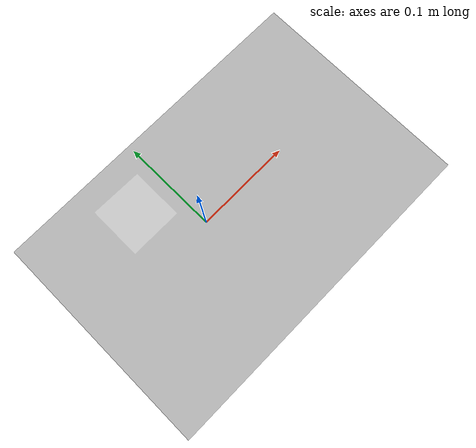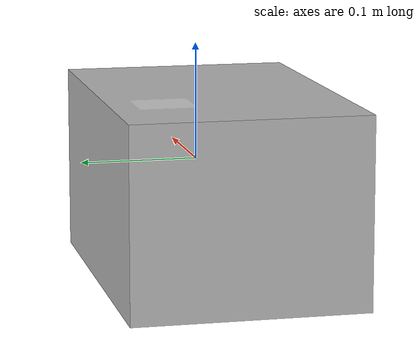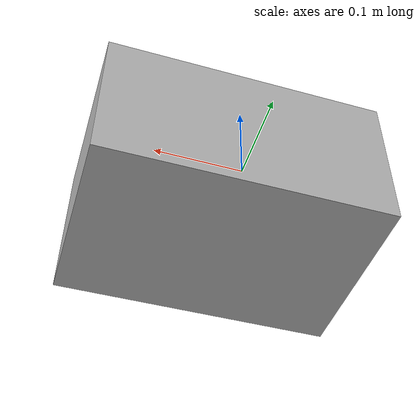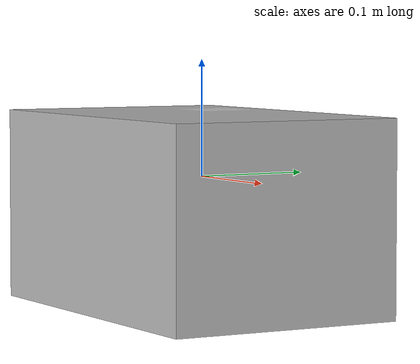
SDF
<?xml version="1.0" ?>
<sdf version="1.6">

    <!-- Import the medium box model -->
  <model name="medium_box_1">
    <link name="link">
      <inertial>
        <mass>1</mass>
        <inertia>
            <ixy>0</ixy>
            <ixz>0</ixz>
            <iyz>0</iyz>
            <ixx>0.05288</ixx>
            <iyy>0.05288</iyy>
            <izz>0.09132</izz>
          </inertia>
      </inertial>
      <collision name="collision">
        <geometry>
          <mesh>
            <uri>model://medium_boxes/meshes/medium_box.dae</uri>
          </mesh>
        </geometry>
      </collision>
      <visual name="visual">
	    <geometry>
          <mesh>
            <uri>model://medium_boxes/meshes/medium_box.dae</uri>
            <scale>1 1 1</scale>
          </mesh>
        </geometry>
      <meta> <layer> 1 </layer></meta>
     </visual>
    </link>
  </model>

</sdf>
